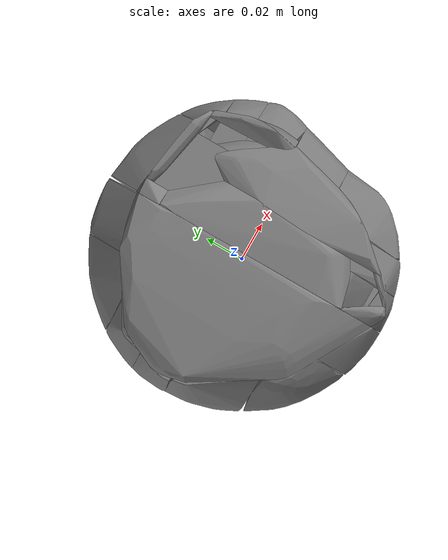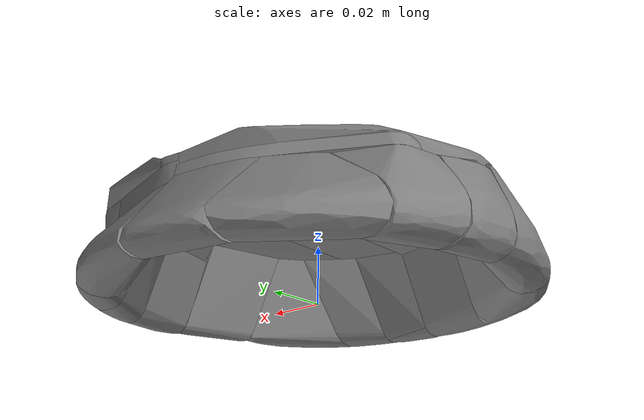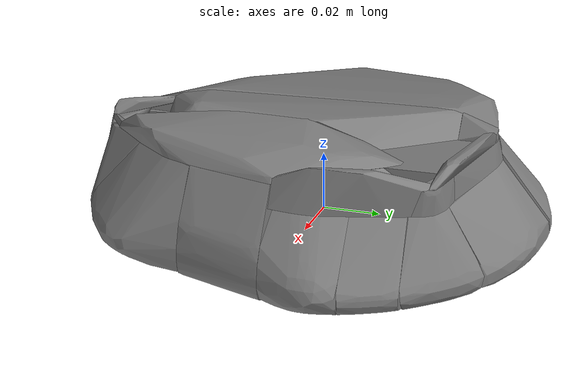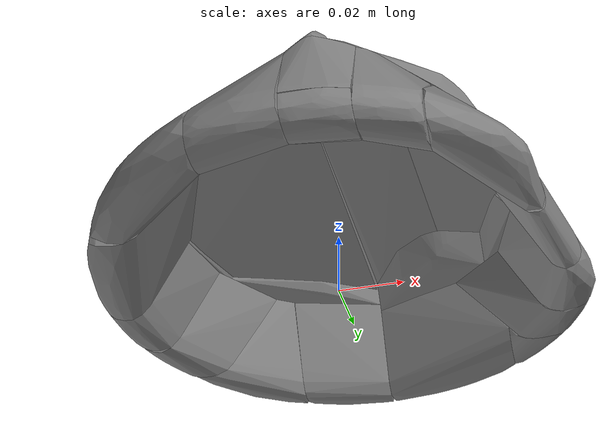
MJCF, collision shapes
<mujoco model="bowl">
  <asset>
    <material name="bowl_mat" rgba="0.6 0.6 0.6 1" specular="0.3" shininess="0.1"/>
    <mesh name="bowl_vis" file="bowl_libero.obj" scale="1 1 1"/>
    <mesh name="bowl_col_0" file="bowl_col_0.obj" scale="1 1 1"/>
    <mesh name="bowl_col_1" file="bowl_col_1.obj" scale="1 1 1"/>
    <mesh name="bowl_col_2" file="bowl_col_2.obj" scale="1 1 1"/>
    <mesh name="bowl_col_3" file="bowl_col_3.obj" scale="1 1 1"/>
    <mesh name="bowl_col_4" file="bowl_col_4.obj" scale="1 1 1"/>
    <mesh name="bowl_col_5" file="bowl_col_5.obj" scale="1 1 1"/>
    <mesh name="bowl_col_6" file="bowl_col_6.obj" scale="1 1 1"/>
    <mesh name="bowl_col_7" file="bowl_col_7.obj" scale="1 1 1"/>
    <mesh name="bowl_col_8" file="bowl_col_8.obj" scale="1 1 1"/>
    <mesh name="bowl_col_9" file="bowl_col_9.obj" scale="1 1 1"/>
    <mesh name="bowl_col_10" file="bowl_col_10.obj" scale="1 1 1"/>
    <mesh name="bowl_col_11" file="bowl_col_11.obj" scale="1 1 1"/>
    <mesh name="bowl_col_12" file="bowl_col_12.obj" scale="1 1 1"/>
    <mesh name="bowl_col_13" file="bowl_col_13.obj" scale="1 1 1"/>
    <mesh name="bowl_col_14" file="bowl_col_14.obj" scale="1 1 1"/>
    <mesh name="bowl_col_15" file="bowl_col_15.obj" scale="1 1 1"/>
    <mesh name="bowl_col_16" file="bowl_col_16.obj" scale="1 1 1"/>
    <mesh name="bowl_col_17" file="bowl_col_17.obj" scale="1 1 1"/>
    <mesh name="bowl_col_18" file="bowl_col_18.obj" scale="1 1 1"/>
    <mesh name="bowl_col_19" file="bowl_col_19.obj" scale="1 1 1"/>
    <mesh name="bowl_col_20" file="bowl_col_20.obj" scale="1 1 1"/>
    <mesh name="bowl_col_21" file="bowl_col_21.obj" scale="1 1 1"/>
    <mesh name="bowl_col_22" file="bowl_col_22.obj" scale="1 1 1"/>
    <mesh name="bowl_col_23" file="bowl_col_23.obj" scale="1 1 1"/>
    <mesh name="bowl_col_24" file="bowl_col_24.obj" scale="1 1 1"/>
    <mesh name="bowl_col_25" file="bowl_col_25.obj" scale="1 1 1"/>
    <mesh name="bowl_col_26" file="bowl_col_26.obj" scale="1 1 1"/>
    <mesh name="bowl_col_27" file="bowl_col_27.obj" scale="1 1 1"/>
    <mesh name="bowl_col_28" file="bowl_col_28.obj" scale="1 1 1"/>
    <mesh name="bowl_col_29" file="bowl_col_29.obj" scale="1 1 1"/>
  </asset>
  <worldbody>
    <body>
      <body name="object">
        <geom type="mesh" mesh="bowl_vis" material="bowl_mat" group="1" contype="0" conaffinity="0"/>
        <geom type="mesh" mesh="bowl_col_0" group="0" density="100" friction="0.95 0.3 0.1" solimp="0.998 0.998 0.001" solref="0.001 1"/>
        <geom type="mesh" mesh="bowl_col_1" group="0" density="100" friction="0.95 0.3 0.1" solimp="0.998 0.998 0.001" solref="0.001 1"/>
        <geom type="mesh" mesh="bowl_col_2" group="0" density="100" friction="0.95 0.3 0.1" solimp="0.998 0.998 0.001" solref="0.001 1"/>
        <geom type="mesh" mesh="bowl_col_3" group="0" density="100" friction="0.95 0.3 0.1" solimp="0.998 0.998 0.001" solref="0.001 1"/>
        <geom type="mesh" mesh="bowl_col_4" group="0" density="100" friction="0.95 0.3 0.1" solimp="0.998 0.998 0.001" solref="0.001 1"/>
        <geom type="mesh" mesh="bowl_col_5" group="0" density="100" friction="0.95 0.3 0.1" solimp="0.998 0.998 0.001" solref="0.001 1"/>
        <geom type="mesh" mesh="bowl_col_6" group="0" density="100" friction="0.95 0.3 0.1" solimp="0.998 0.998 0.001" solref="0.001 1"/>
        <geom type="mesh" mesh="bowl_col_7" group="0" density="100" friction="0.95 0.3 0.1" solimp="0.998 0.998 0.001" solref="0.001 1"/>
        <geom type="mesh" mesh="bowl_col_8" group="0" density="100" friction="0.95 0.3 0.1" solimp="0.998 0.998 0.001" solref="0.001 1"/>
        <geom type="mesh" mesh="bowl_col_9" group="0" density="100" friction="0.95 0.3 0.1" solimp="0.998 0.998 0.001" solref="0.001 1"/>
        <geom type="mesh" mesh="bowl_col_10" group="0" density="100" friction="0.95 0.3 0.1" solimp="0.998 0.998 0.001" solref="0.001 1"/>
        <geom type="mesh" mesh="bowl_col_11" group="0" density="100" friction="0.95 0.3 0.1" solimp="0.998 0.998 0.001" solref="0.001 1"/>
        <geom type="mesh" mesh="bowl_col_12" group="0" density="100" friction="0.95 0.3 0.1" solimp="0.998 0.998 0.001" solref="0.001 1"/>
        <geom type="mesh" mesh="bowl_col_13" group="0" density="100" friction="0.95 0.3 0.1" solimp="0.998 0.998 0.001" solref="0.001 1"/>
        <geom type="mesh" mesh="bowl_col_14" group="0" density="100" friction="0.95 0.3 0.1" solimp="0.998 0.998 0.001" solref="0.001 1"/>
        <geom type="mesh" mesh="bowl_col_15" group="0" density="100" friction="0.95 0.3 0.1" solimp="0.998 0.998 0.001" solref="0.001 1"/>
        <geom type="mesh" mesh="bowl_col_16" group="0" density="100" friction="0.95 0.3 0.1" solimp="0.998 0.998 0.001" solref="0.001 1"/>
        <geom type="mesh" mesh="bowl_col_17" group="0" density="100" friction="0.95 0.3 0.1" solimp="0.998 0.998 0.001" solref="0.001 1"/>
        <geom type="mesh" mesh="bowl_col_18" group="0" density="100" friction="0.95 0.3 0.1" solimp="0.998 0.998 0.001" solref="0.001 1"/>
        <geom type="mesh" mesh="bowl_col_19" group="0" density="100" friction="0.95 0.3 0.1" solimp="0.998 0.998 0.001" solref="0.001 1"/>
        <geom type="mesh" mesh="bowl_col_20" group="0" density="100" friction="0.95 0.3 0.1" solimp="0.998 0.998 0.001" solref="0.001 1"/>
        <geom type="mesh" mesh="bowl_col_21" group="0" density="100" friction="0.95 0.3 0.1" solimp="0.998 0.998 0.001" solref="0.001 1"/>
        <geom type="mesh" mesh="bowl_col_22" group="0" density="100" friction="0.95 0.3 0.1" solimp="0.998 0.998 0.001" solref="0.001 1"/>
        <geom type="mesh" mesh="bowl_col_23" group="0" density="100" friction="0.95 0.3 0.1" solimp="0.998 0.998 0.001" solref="0.001 1"/>
        <geom type="mesh" mesh="bowl_col_24" group="0" density="100" friction="0.95 0.3 0.1" solimp="0.998 0.998 0.001" solref="0.001 1"/>
        <geom type="mesh" mesh="bowl_col_25" group="0" density="100" friction="0.95 0.3 0.1" solimp="0.998 0.998 0.001" solref="0.001 1"/>
        <geom type="mesh" mesh="bowl_col_26" group="0" density="100" friction="0.95 0.3 0.1" solimp="0.998 0.998 0.001" solref="0.001 1"/>
        <geom type="mesh" mesh="bowl_col_27" group="0" density="100" friction="0.95 0.3 0.1" solimp="0.998 0.998 0.001" solref="0.001 1"/>
        <geom type="mesh" mesh="bowl_col_28" group="0" density="100" friction="0.95 0.3 0.1" solimp="0.998 0.998 0.001" solref="0.001 1"/>
        <geom type="mesh" mesh="bowl_col_29" group="0" density="100" friction="0.95 0.3 0.1" solimp="0.998 0.998 0.001" solref="0.001 1"/>
      </body>
      <site rgba="0 0 0 0" size="0.005" pos="0 0 0" name="bottom_site"/>
      <site rgba="0 0 0 0" size="0.005" pos="0 0 0.04016" name="top_site"/>
      <site rgba="0 0 0 0" size="0.005" pos="0.07651 0 0" name="horizontal_radius_site"/>
      <site type="box" rgba="0 0 0 0" pos="0 0 0.02209" size="0.04516 0.04591 0.01205" name="contain_region"/>
    </body>
  </worldbody>
</mujoco>
